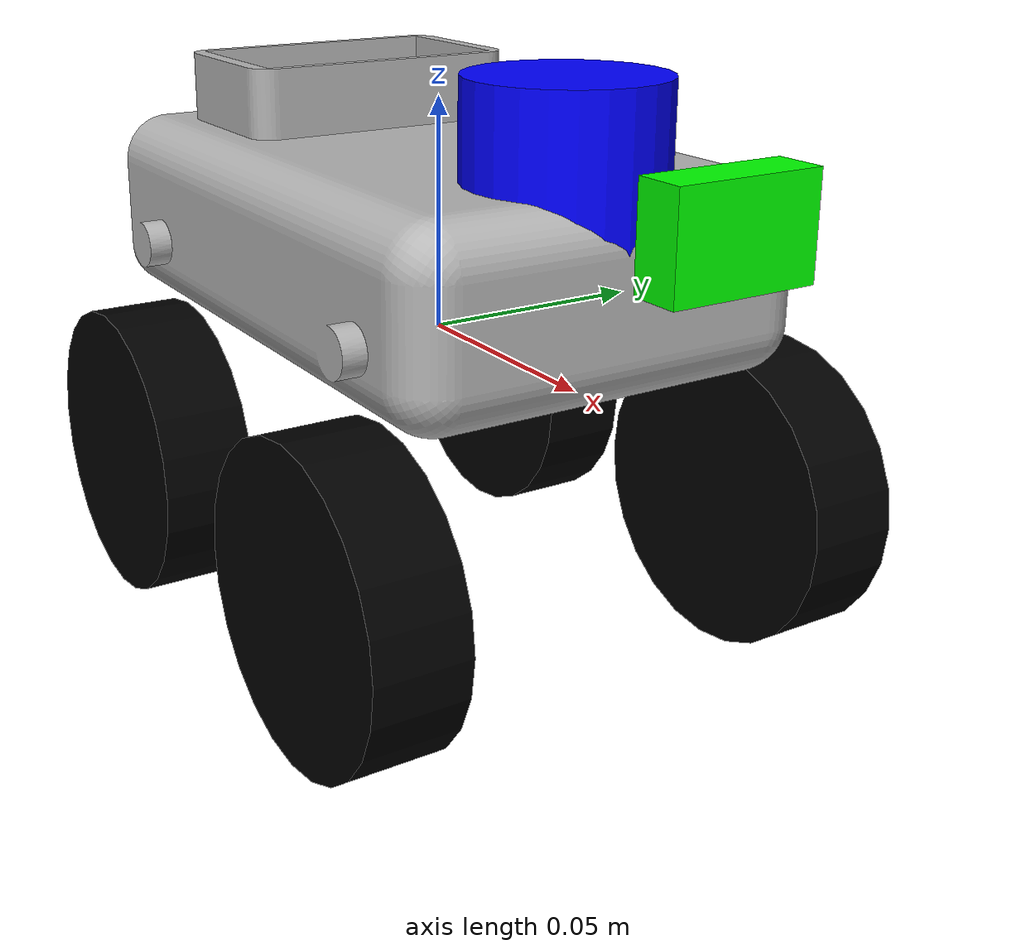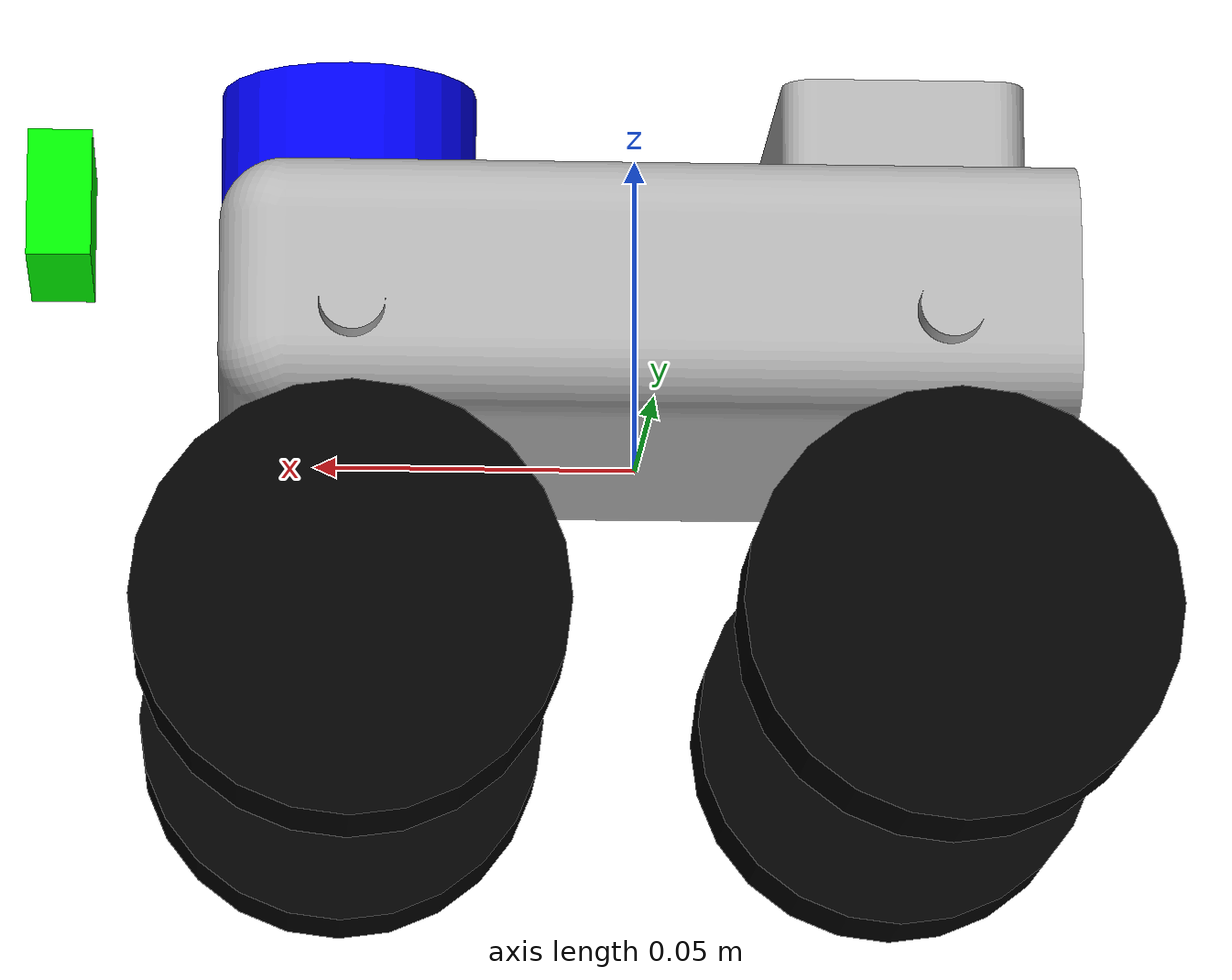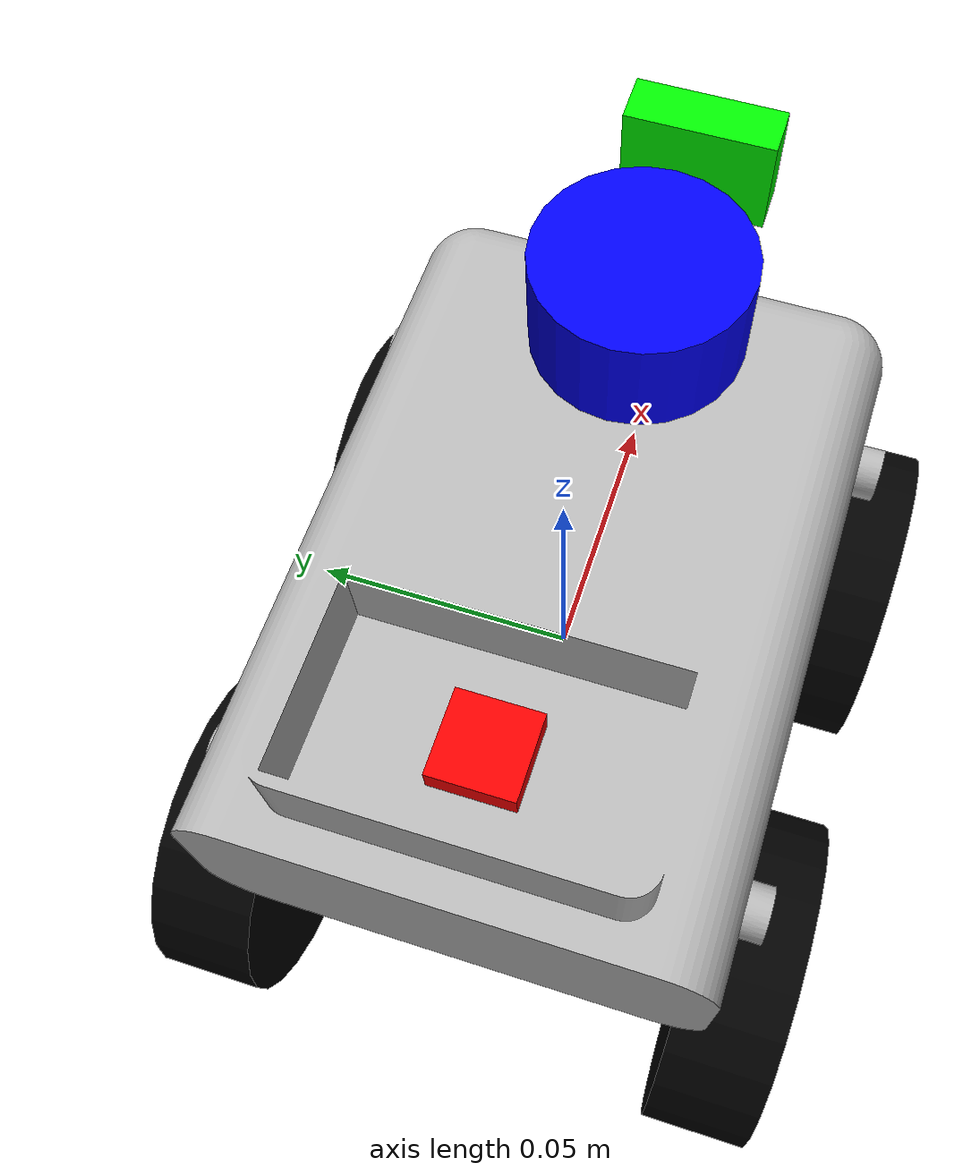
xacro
<?xml version="1.0" ?>
<robot name="final_project" xmlns:xacro="http://www.ros.org/wiki/xacro">

<xacro:include filename="$(find final_project_description)/urdf/materials.xacro" />
<xacro:include filename="$(find final_project_description)/urdf/final_project.gazebo" />

<!-- Properties -->
<xacro:property name="wheel_radius" value="0.0325"/>
<xacro:property name="wheel_width" value="0.02"/>
<xacro:property name="wheel_separation" value="0.1"/>
<xacro:property name="wheel_base" value="0.09"/>

<xacro:property name="base_length" value="0.18"/>
<xacro:property name="base_width" value="0.10"/>
<xacro:property name="base_height" value="0.08"/>
<xacro:property name="base_mass" value="2.0"/>  <!-- INCREASED from 1 -->
<xacro:property name="wheel_mass" value="0.3"/>  <!-- INCREASED from 0.2 -->

<!-- Base Footprint -->
<link name="base_footprint"/>

<!-- Base Link -->
<link name="base_link">
  <inertial>
    <origin xyz="0 0 0" rpy="0 0 0"/>
    <mass value="${base_mass}"/>
    <inertia
      ixx="${(1/12) * base_mass * (base_width*base_width + base_height*base_height)}"
      ixy="0.0" ixz="0.0"
      iyy="${(1/12) * base_mass * (base_length*base_length + base_height*base_height)}"
      iyz="0.0"
      izz="${(1/12) * base_mass * (base_length*base_length + base_width*base_width)}"/>
  </inertial>
  <visual>
    <origin xyz="0 0 0" rpy="0 0 0"/>
    <geometry>
      <mesh filename="file://$(find final_project_description)/meshes/base_link.stl" scale="0.001 0.001 0.001"/>
    </geometry>
    <material name="silver"/>
  </visual>
  <collision>
    <origin xyz="0 0 0" rpy="0 0 0"/>
    <geometry>
      <box size="${base_length} ${base_width} ${base_height}"/>
    </geometry>
  </collision>
</link>

<!-- Joint: base_footprint to base_link -->
<joint name="base_footprint_joint" type="fixed">
  <parent link="base_footprint"/>
  <child link="base_link"/>
  <origin xyz="0 0 0" rpy="0 0 0"/>
</joint>

<!-- Wheel Macro -->
<xacro:macro name="wheel" params="prefix side x_reflect y_reflect">
  <link name="${prefix}_${side}_wheel_1">
    <inertial>
      <origin xyz="0 0 0" rpy="0 0 0"/>
      <mass value="${wheel_mass}"/>
      <inertia
        ixx="${(wheel_mass/12.0) * (3*wheel_radius*wheel_radius + wheel_width*wheel_width)}"
        ixy="0" ixz="0"
        iyy="${(wheel_mass/2.0) * (wheel_radius*wheel_radius)}"
        iyz="0"
        izz="${(wheel_mass/12.0) * (3*wheel_radius*wheel_radius + wheel_width*wheel_width)}"/>
    </inertial>
    <!-- Use cylinder for consistent visualization -->
    <visual>
      <origin xyz="0 0 0" rpy="1.5708 0 0"/>
      <geometry>
        <cylinder radius="${wheel_radius}" length="${wheel_width}"/>
      </geometry>
      <material name="black">
        <color rgba="0 0 0 1"/>
      </material>
    </visual>
    <collision>
      <origin xyz="0 0 0" rpy="1.5708 0 0"/>
      <geometry>
        <cylinder radius="${wheel_radius}" length="${wheel_width}"/>
      </geometry>
    </collision>
  </link>

  <joint name="${prefix}_${side}_wheel_joint" type="continuous">
    <parent link="base_link"/>
    <child link="${prefix}_${side}_wheel_1"/>
    <!-- Wheels positioned close to body -->
    <origin xyz="${x_reflect*wheel_base/2} ${y_reflect*wheel_separation/2} ${-wheel_radius}" rpy="0 0 0"/>
    <axis xyz="0 1 0"/>
    <dynamics damping="0.1" friction="0.1"/>  <!-- Added dynamics -->
  </joint>
</xacro:macro>

<!-- Instantiate Wheels -->
<xacro:wheel prefix="front" side="left" x_reflect="1" y_reflect="1"/>
<xacro:wheel prefix="front" side="right" x_reflect="1" y_reflect="-1"/>
<xacro:wheel prefix="back" side="left" x_reflect="-1" y_reflect="1"/>
<xacro:wheel prefix="back" side="right" x_reflect="-1" y_reflect="-1"/>

<!-- Candy -->
<link name="candy_1">
  <inertial>
    <origin xyz="0 0 0.005" rpy="0 0 0"/>
    <mass value="0.01"/>
    <inertia ixx="0.0001" iyy="0.0001" izz="0.0001" ixy="0.0" iyz="0.0" ixz="0.0"/>
  </inertial>
  <visual>
    <origin xyz="0 0 0" rpy="0 0 0"/>
    <geometry>
      <box size="0.015 0.015 0.01"/>
    </geometry>
    <material name="red">
      <color rgba="1 0 0 1"/>
    </material>
  </visual>
  <collision>
    <origin xyz="0 0 0.005" rpy="0 0 0"/>
    <geometry>
      <box size="0.015 0.015 0.01"/>
    </geometry>
  </collision>
</link>

<!-- LiDAR -->
<link name="lidar_1">
  <inertial>
    <origin xyz="0 0 0.015" rpy="0 0 0"/>
    <mass value="0.1"/>
    <inertia ixx="0.0001" iyy="0.0001" izz="0.0001" ixy="0.0" iyz="0.0" ixz="0.0"/>
  </inertial>
  <visual>
    <origin xyz="0 0 0" rpy="0 0 0"/>
    <geometry>
      <cylinder radius="0.02" length="0.03"/>
    </geometry>
    <material name="blue">
      <color rgba="0 0 1 1"/>
    </material>
  </visual>
  <collision>
    <origin xyz="0 0 0.015" rpy="0 0 0"/>
    <geometry>
      <cylinder radius="0.02" length="0.03"/>
    </geometry>
  </collision>
</link>

<!-- Camera -->
<link name="camera_1">
  <inertial>
    <origin xyz="0.0025 0 0" rpy="0 0 0"/>
    <mass value="0.05"/>
    <inertia ixx="0.0001" iyy="0.0001" izz="0.0001" ixy="0.0" iyz="0.0" ixz="0.0"/>
  </inertial>
  <visual>
    <origin xyz="0 0 0" rpy="0 0 0"/>
    <geometry>
      <box size="0.01 0.03 0.02"/>
    </geometry>
    <material name="green">
      <color rgba="0 1 0 1"/>
    </material>
  </visual>
  <collision>
    <origin xyz="0.0025 0 0" rpy="0 0 0"/>
    <geometry>
      <box size="0.01 0.03 0.02"/>
    </geometry>
  </collision>
</link>

<!-- Camera Optical Frame -->
<link name="camera_optical_link"/>

<!-- Fixed Joints -->
<joint name="candy_joint" type="fixed">
  <origin xyz="-0.04 0.0 0.04" rpy="0 0 0"/>
  <parent link="base_link"/>
  <child link="candy_1"/>
</joint>

<joint name="lidar_joint" type="fixed">
  <origin xyz="0.045 0.0 0.045" rpy="0 0 0"/>
  <parent link="base_link"/>
  <child link="lidar_1"/>
</joint>

<joint name="camera_joint" type="fixed">
  <origin xyz="0.09 0.0 0.04" rpy="0 0 0"/>
  <parent link="base_link"/>
  <child link="camera_1"/>
</joint>

<joint name="camera_optical_joint" type="fixed">
  <origin xyz="0 0 0" rpy="-1.5708 0 -1.5708"/>
  <parent link="camera_1"/>
  <child link="camera_optical_link"/>
</joint>

</robot>

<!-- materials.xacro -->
<robot name="final_project" xmlns:xacro="http://www.ros.org/wiki/xacro" >

<material name="silver">
  <color rgba="0.700 0.700 0.700 1.000"/>
</material>

</robot>
